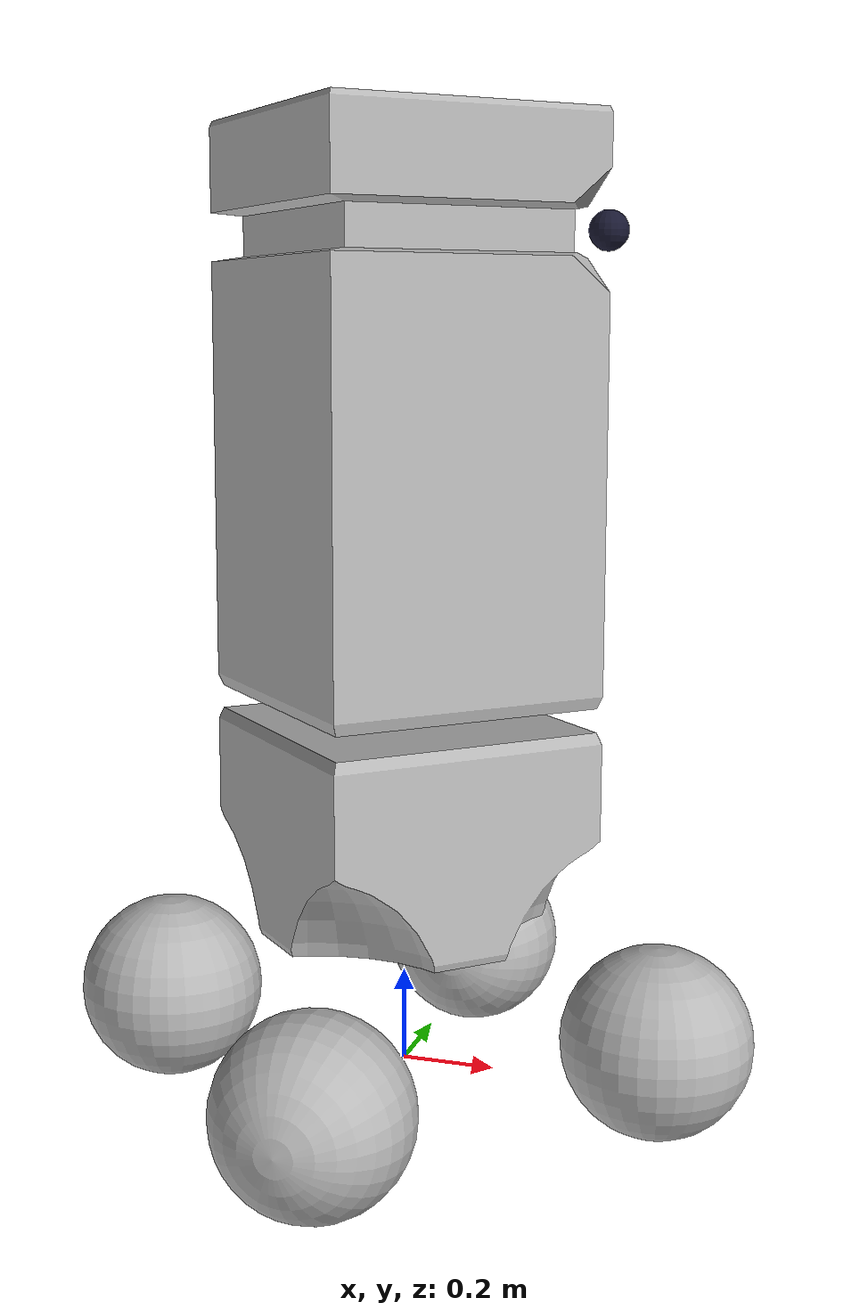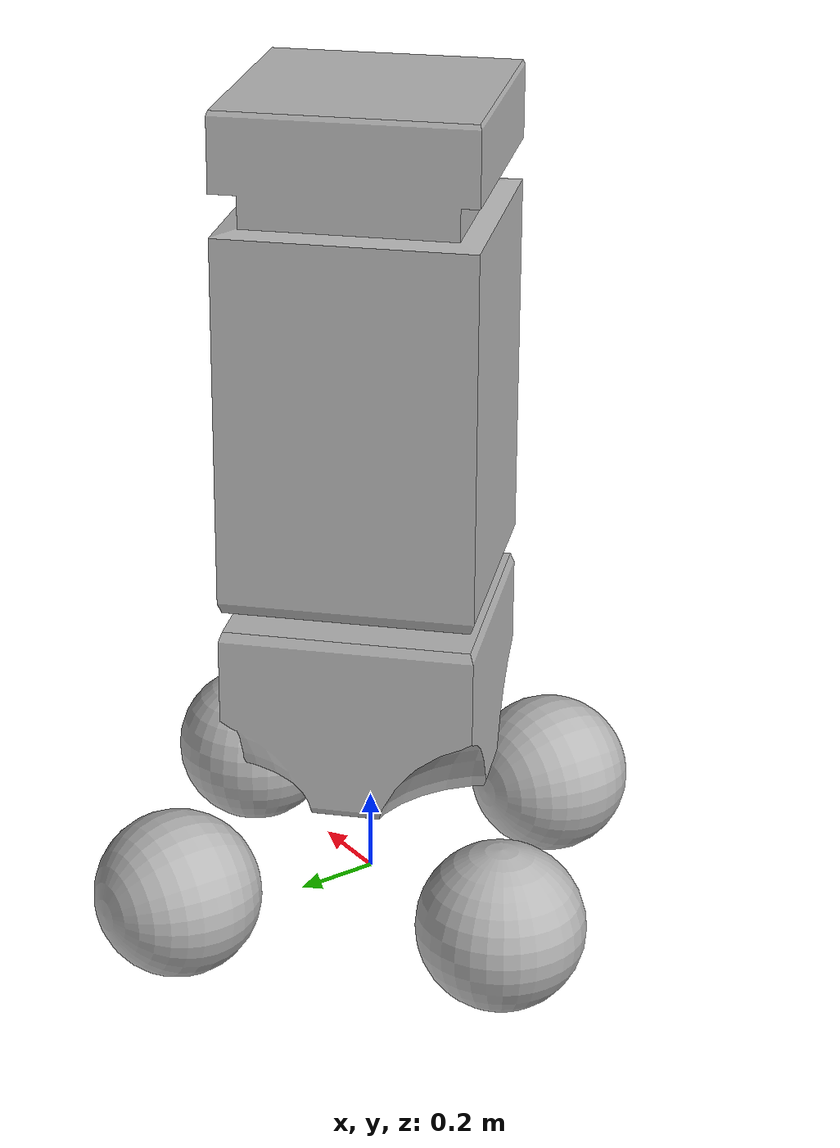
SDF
<?xml version='1.0'?>
<sdf version='1.7'>
  <model name='bereg'>
    <pose>0 0 0 0 0 0</pose>

    <link name='base_link'>
      <pose>0 0 0 0 0 0</pose>
      <inertial>
        <mass>1.14395</mass>
        <inertia>
          <ixx>0.126164</ixx>
          <ixy>0</ixy>
          <ixz>0</ixz>
          <iyy>0.416519</iyy>
          <iyz>0</iyz>
          <izz>0.481014</izz>
        </inertia>
      </inertial>
      <visual name='visual'>
        <pose>0 0 0.3 0 0 1.5707</pose>
        <geometry>
          <mesh>
            <uri>model://bereg/body.dae</uri>
            <scale>1 1 1</scale>
          </mesh>
        </geometry>
        <transparency>0</transparency>
        <cast_shadows>1</cast_shadows>
      </visual>
      <collision name='collision'>
        <pose>0 0 1.18 0 0 0.785398</pose>
        <geometry>
          <box>
            <size>0.6 0.6 1.76</size>
          </box>
        </geometry>
      </collision>
    </link>

    <link name='left_wheel'>
      <pose>0 0.55 0.1 -1.5707 0 0</pose>
      <inertial>
        <mass>2</mass>
        <inertia>
          <ixx>0.145833</ixx>
          <ixy>0</ixy>
          <ixz>0</ixz>
          <iyy>0.145833</iyy>
          <iyz>0</iyz>
          <izz>0.125</izz>
        </inertia>
      </inertial>
      <visual name='visual'>
        <geometry>
          <mesh>
            <uri>model://bereg/wheel.dae</uri>
            <scale>1 1 1</scale>
          </mesh>
        </geometry>
      </visual>
      <collision name='collision'>
        <geometry>
          <sphere>
            <radius>0.2</radius>
          </sphere>
        </geometry>
        <surface>
          <friction>
            <ode>
              <mu>1</mu>
              <mu2>1</mu2>
              <slip1>0</slip1>
              <slip2>0</slip2>
            </ode>
          </friction>
          <contact>
            <ode>
              <soft_cfm>0</soft_cfm>
              <soft_erp>0.2</soft_erp>
              <kp>1e+13</kp>
              <kd>1</kd>
              <max_vel>0.01</max_vel>
              <min_depth>0.01</min_depth>
            </ode>
          </contact>
        </surface>
      </collision>
    </link>

    <link name='right_wheel'>
      <pose>0 -0.55 0.1 -1.5707 0 0</pose>
      <inertial>
        <mass>2</mass>
        <inertia>
          <ixx>0.145833</ixx>
          <ixy>0</ixy>
          <ixz>0</ixz>
          <iyy>0.145833</iyy>
          <iyz>0</iyz>
          <izz>0.125</izz>
        </inertia>
      </inertial>
      <visual name='visual'>
        <geometry>
          <mesh>
            <uri>model://bereg/wheel.dae</uri>
            <scale>1 1 1</scale>
          </mesh>
        </geometry>
      </visual>
      <collision name='collision'>
        <geometry>
          <sphere>
            <radius>0.2</radius>
          </sphere>
        </geometry>
        <surface>
          <friction>
            <ode>
              <mu>1</mu>
              <mu2>1</mu2>
              <slip1>0</slip1>
              <slip2>0</slip2>
            </ode>
          </friction>
          <contact>
            <ode>
              <soft_cfm>0</soft_cfm>
              <soft_erp>0.2</soft_erp>
              <kp>1e+13</kp>
              <kd>1</kd>
              <max_vel>0.01</max_vel>
              <min_depth>0.01</min_depth>
            </ode>
          </contact>
        </surface>
      </collision>
    </link>

    <joint name='left_joint' type='revolute'>
      <parent>base_link</parent>
      <child>left_wheel</child>
      <axis>
        <xyz>0 0 1</xyz>
        <limit>
          <lower>-1.79769e+308</lower>
          <upper>1.79769e+308</upper>
        </limit>
      </axis>
    </joint>

    <joint name='right_joint' type='revolute'>
      <parent>base_link</parent>
      <child>right_wheel</child>
      <axis>
        <xyz>0 0 1</xyz>
        <limit>
          <lower>-1.79769e+308</lower>
          <upper>1.79769e+308</upper>
        </limit>
      </axis>
    </joint>

    <link name='caster_front'>
      <pose>0.55 0 0.105 0 0 -1.5707</pose>
      <inertial>
        <mass>1</mass>
        <inertia>
          <ixx>0.1</ixx>
          <ixy>0</ixy>
          <ixz>0</ixz>
          <iyy>0.1</iyy>
          <iyz>0</iyz>
          <izz>0.1</izz>
        </inertia>
      </inertial>
      <visual name='visual'>
        <geometry>
          <mesh>
            <uri>model://bereg/wheel.dae</uri>
            <scale>1 1 1</scale>
          </mesh>
        </geometry>
      </visual>
      <collision name='collision'>
        <geometry>
          <sphere>
            <radius>0.2</radius>
          </sphere>
        </geometry>
      </collision>
    </link>

    <link name='caster_rear'>
      <pose>-0.55 0 0.105 0 0 -1.5707</pose>
      <inertial>
        <mass>1</mass>
        <inertia>
          <ixx>0.1</ixx>
          <ixy>0</ixy>
          <ixz>0</ixz>
          <iyy>0.1</iyy>
          <iyz>0</iyz>
          <izz>0.1</izz>
        </inertia>
      </inertial>
      <visual name='visual'>
        <geometry>
          <mesh>
            <uri>model://bereg/wheel.dae</uri>
            <scale>1 1 1</scale>
          </mesh>
        </geometry>
      </visual>
      <collision name='collision'>
        <geometry>
          <sphere>
            <radius>0.2</radius>
          </sphere>
        </geometry>
      </collision>
    </link>

    <joint name='caster_front_joint' type='ball'>
      <parent>base_link</parent>
      <child>caster_front</child>
    </joint>

    <joint name='caster_rear_joint' type='ball'>
      <parent>base_link</parent>
      <child>caster_rear</child>
    </joint>

    <plugin name='diff_drive' filename='libgazebo_ros_diff_drive.so'>

      <!-- Number of wheel pairs -->

      <!-- wheels0 -->
      <left_joint>left_joint</left_joint>
      <right_joint>right_joint</right_joint>

      <!-- kinematics -->
      <wheel_separation>1.1</wheel_separation>

      <wheel_diameter>0.4</wheel_diameter>

      <!-- limits -->
      <max_wheel_torque>10</max_wheel_torque>
      <max_wheel_acceleration>1.0</max_wheel_acceleration>

      <!-- output -->
      <publish_odom>true</publish_odom>
      <publish_odom_tf>true</publish_odom_tf>
      <publish_wheel_tf>true</publish_wheel_tf>

      <odometry_frame>odom</odometry_frame>
      <robot_base_frame>base_link</robot_base_frame>

    </plugin>

     <link name="lidar">
       <pose>0 0 0.775 0 0 0</pose>
       <visual name='visual'>
         <geometry>
           <sphere>
             <radius>0.02</radius>
           </sphere>
         </geometry>
         <material>
           <ambient>0.1 0.1 0.1 1</ambient>
           <diffuse>0.1 0.1 0.2 1</diffuse>
         </material>
       </visual>

       <sensor name="lidar_sensor" type="ray">
         <always_on>true</always_on>
         <update_rate>10.0</update_rate>
         <visualize>false</visualize>
         <ray>
           <scan>
             <horizontal>
               <samples>300</samples>
               <resolution>1.0</resolution>
               <min_angle>-3.14159265</min_angle>
               <max_angle>3.14159265</max_angle>
             </horizontal>
           </scan>
           <range>
             <min>0.5</min>
             <max>8.0</max>
           </range>
           <noise>
             <type>gaussian</type>
             <mean>0.0</mean>
             <stddev>0.01</stddev>
           </noise>
         </ray>

         <plugin name="lidar_plugin" filename="libgazebo_ros_ray_sensor.so">
           <ros>
             <remapping>~/out:=scan</remapping>
           </ros>

           <output_type>sensor_msgs/LaserScan</output_type>
         </plugin>

       </sensor>

     </link>

     <joint name="lidar_joint" type="fixed">
       <parent>base_link</parent>
       <child>lidar</child>
     </joint>

     <link name="camera">
       <pose>0.42 0 1.75 0 0 0</pose>
       <visual name='visual'>
         <geometry>
           <sphere>
             <radius>0.04</radius>
         </sphere>
          </geometry>
          <material>
            <ambient>0.1 0.1 0.1 1</ambient>
            <diffuse>0.1 0.1 0.2 1</diffuse>
          </material>
       </visual>

       <sensor type="depth" name="camera">
         <update_rate>30</update_rate>
         <visualize>false</visualize>
         <camera>
           <horizontal_fov>1.57</horizontal_fov>
           <image>
             <width>640</width>
             <height>480</height>
             <format>B8G8R8</format>
           </image>
           <depth_camera>
           </depth_camera>
           <clip>
             <near>0.1</near>
             <far>300</far>
           </clip>
           <noise>
             <type>gaussian</type>
             <mean>0.0</mean>
             <stddev>0.007</stddev>
           </noise>
         </camera>

         <plugin name="camera_plugin" filename="libgazebo_ros_camera.so">

           <camera_name>camera</camera_name>
           <frame_name>camera</frame_name>

           <min_depth>0.4</min_depth>
           <max_depth>16</max_depth>

         </plugin>

       </sensor>

     </link>

     <joint name="camera_joint" type="fixed">
       <parent>base_link</parent>
       <child>camera</child>
     </joint>

  </model>
</sdf>
